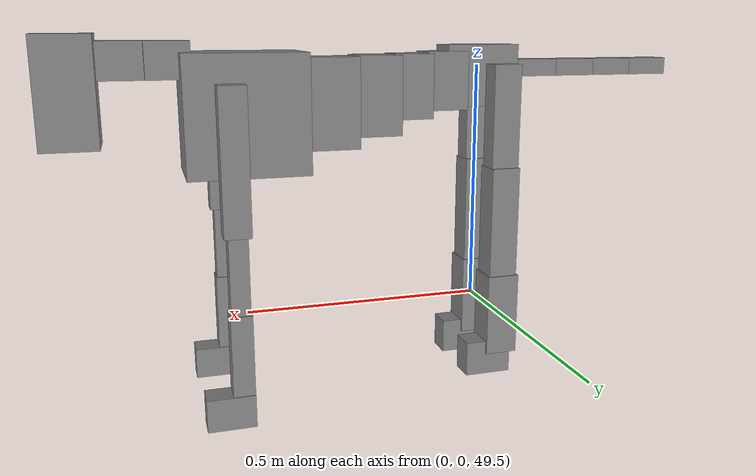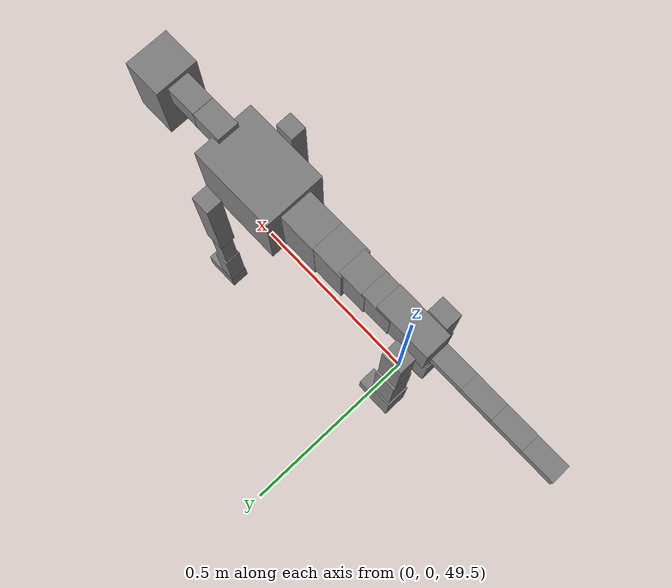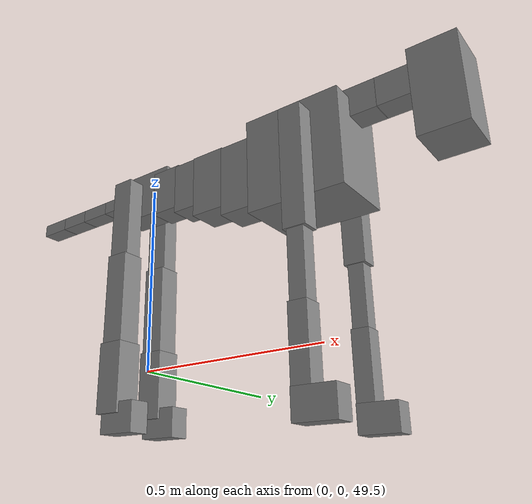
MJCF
<mujoco model="dog">

    <default>
        <joint armature="0.02" stiffness="1" damping="0.2" limited="true"/>
        <geom condim="3" friction="1 0.05 0.05" margin="0.01"/>
        <motor ctrllimited="true" ctrlrange="-1.0 1.0" forcelimited="true" gear="50"/>
    </default>

    <compiler inertiafromgeom="true" angle="radian"/>

    <option timestep="0.016" iterations="50" tolerance="1e-10" solver="Newton" jacobian="dense" cone="pyramidal"/>

    <size nconmax="20000" njmax="60000" nstack="5000000"/>
    <visual>
        <map force="0.1" zfar="30"/>
        <rgba haze="0.15 0.25 0.35 1"/>
        <quality shadowsize="2048"/>
        <global offwidth="800" offheight="800"/>
    </visual>

    <asset>
        <texture type="skybox" builtin="gradient" rgb1="0.3 0.5 0.7" rgb2="0 0 0" width="512" height="512"/>
        <texture name="texplane" type="2d" builtin="checker" rgb1=".2 .3 .4" rgb2=".1 0.15 0.2" width="512" height="512"
                 mark="cross" markrgb=".8 .8 .8"/>
        <texture name="texgeom" type="cube" builtin="flat" mark="cross" width="127" height="1278" rgb1="0.8 0.6 0.4"
                 rgb2="0.8 0.6 0.4" markrgb="1 1 1" random="0.01"/>

        <material name="matplane" reflectance="0.3" texture="texplane" texrepeat="1 1" texuniform="true"/>
        <material name="matgeom" texture="texgeom" texuniform="true" rgba="0.8 0.6 .4 1"/>
    </asset>

    <worldbody>
        <geom name="floor" pos="0 0 0" size="0 0 .25" type="plane" material="matplane" condim="3"/>

        <light directional="false" diffuse=".2 .2 .2" specular="0 0 0" pos="0 0 5" dir="0 0 -1" castshadow="false"/>
        <light mode="targetbodycom" target="torso" directional="false" diffuse=".8 .8 .8" specular="0.3 0.3 0.3"
               pos="0 0 4.0" dir="0 0 -1"/>

        <body name="root" pos="0 0 50">
            <freejoint name="root_1"/>
            <geom type="box" pos="0 0 -0.02" size="0.0774  0.0358  0.063" density="2030"/>

            <body name="spine1" pos="0.054 0 0">
                <joint name="spine1_y" axis="0 1 0" range="0 0.7" limited="true"/>
                <geom type="box" pos="0.02375 0 -0.03" size="0.04375  0.0375  0.05985" density="2030"/>

                <body name="spine2" pos="0.0612 0 0">
                    <joint name="spine2_y" axis="0 1 0" range="-0.15 0.15" limited="true"/>
                    <geom type="box" pos="0.03555  0  -0.04" size="0.04055  0.039  0.06615" density="2030"/>

                    <body name="spine3" pos="0.0730 0 0">
                        <joint name="spine3_y" axis="0 1 0" range="-0.15 0.15" limited="true"/>
                        <geom type="box" pos="0.03555  0  -0.057" size="0.04555  0.0445  0.081" density="2030"/>

                        <body name="spine4" pos="0.0780 0 0">
                            <joint name="spine4_y" axis="0 1 0" range="-0.15 0.15" limited="true"/>
                            <geom type="box" pos="0.05265  0  -0.07" size="0.05265  0.045  0.09135" density="2030"/>

                            <body name="torso" pos="0.1082 0 0">
                                <joint name="torso_y" axis="0 1 0" range="-0.15 0.15" limited="true"/>
                                <geom type="box" pos="0.11925  0  -0.085" size="0.11925  0.085  0.11745"
                                      density="2030"/>

                                <body name="neck1" pos="0.2160  0   0.0180">
                                    <joint name="neck1_y" axis="0 1 0" range="-1.2  -1" limited="true"/>
                                    <geom type="box" pos="0.0423  0  0" size="0.0423  0.03  0.036" density="2325"/>

                                    <body name="neck2" pos="0.0853  0  0">
                                        <joint name="neck2_y" axis="0 1 0" range="0.1  0" limited="true"/>
                                        <geom type="box" pos="0.0423  0  0" size="0.0423  0.03  0.036" density="2325"/>

                                        <body name="head" pos="0.0853  0  0">
                                            <joint name="head_y" axis="0 1 0" range="-0.3  -0.2" limited="true"/>
                                            <geom type="box" pos="0.0531  0  -0.055" size="0.0531  0.06  0.1044"
                                                  density="4030"/>

                                        </body>
                                    </body>
                                </body>

                                <body name="front_shoulder" pos="0.156  0   -0.0480">
                                    <joint name="front_shoulder_y" axis="0 1 0" range="-1 1.5" limited="true"/>
                                    <geom type="box" pos="0 0.13 -0.1133" size="0.0262  0.0224  0.1400" density="1158"/>
                                    <geom type="box" pos="0 -0.13 -0.1133" size="0.0262  0.0224  0.1400"
                                          density="1158"/>

                                    <body name="front_elbow" pos="0  0  -0.2267">
                                        <joint name="front_elbow_y" axis="0 1 0" range="-2 0" limited="true"/>
                                        <geom type="box" pos="0 0.13 -0.0951" size="0.0188  0.0192  0.0951"
                                              density="1081"/>
                                        <geom type="box" pos="0 -0.13 -0.0951" size="0.0188  0.0192  0.0951"
                                              density="1081"/>

                                        <body name="front_wrist" pos="0  0  -0.1901">
                                            <joint name="front_wrist_y" axis="0 1 0" range="-0.2 0" limited="true"/>
                                            <geom type="box" pos="0 0.13 -0.0812" size="0.0212  0.0236  0.0944"
                                                  density="1664"/>
                                            <geom type="box" pos="0 -0.13 -0.0812" size="0.0212  0.0236  0.0944"
                                                  density="1664"/>

                                            <body name="front_finger_end" pos="0  0  -0.1624">
                                                <joint name="front_finger_y" axis="0 1 0" range="-0.4 1"
                                                       limited="true"/>
                                                <geom type="box" pos="0.0257  0.13  -0.0178"
                                                      size="0.0471  0.0257  0.0328" density="1515"/>
                                                <geom type="box" pos="0.0257  -0.13  -0.0178"
                                                      size="0.0471  0.0257  0.0328" density="1515"/>

                                            </body>

                                        </body>
                                    </body>
                                </body>

                            </body>
                        </body>
                    </body>
                </body>
            </body>

            <body name="back_hip" pos="-0.03 0 -0.018">
                <joint name="back_hip_y" axis="0 1 0" range="-1.5 0.3" limited="true"/>
                <geom type="box" pos="0 0.07 -0.1022" size="0.0293  0.0230  0.1250" density="1154"/>
                <geom type="box" pos="0 -0.07 -0.1022" size="0.0293  0.0230  0.1250" density="1154"/>

                <body name="back_knee" pos="0  0  -0.2043">
                    <joint name="back_knee_y" axis="0 1 0" range="0 2.8" limited="true"/>
                    <geom type="box" pos="0 0.07 -0.1134" size="0.0301  0.0297  0.1289" density="1227"/>
                    <geom type="box" pos="0 -0.07 -0.1134" size="0.0301  0.0297  0.1289" density="1227"/>

                    <body name="back_ankle" pos="0  0  -0.2267">
                        <joint name="back_ankle_y" axis="0 1 0" range="-2.2 0" limited="true"/>
                        <geom type="box" pos="0 0.07 -0.0749" size="0.0339  0.0339  0.0861" density="1284"/>
                        <geom type="box" pos="0 -0.07 -0.0749" size="0.0339  0.0339  0.0861" density="1284"/>

                        <body name="back_toe_end" pos="0  0  -0.1497">
                            <joint name="back_toe_y" axis="0 1 0" range="-0.4 1" limited="true"/>
                            <geom type="box" pos="0.0270  0.07  -0.0217" size="0.0496  0.0270  0.0367" density="1515"/>
                            <geom type="box" pos="0.0270  -0.07  -0.0217" size="0.0496  0.0270  0.0367" density="1515"/>

                        </body>
                    </body>
                </body>
            </body>

            <body name="tail1" pos="-0.074 0 -0.006">
                <joint name="tail1_y" axis="0 1 0" range="-0.2 0.2" limited="true"/>
                <geom type="box" pos="-0.0536  0  0" size="0.045  0.025  0.0175" density="1587"/>

                <body name="tail2" pos="-0.09 0 0">
                    <joint name="tail2_y" axis="0 1 0" range="-0.2 0.2" limited="true"/>
                    <geom type="box" pos="-0.0536  0  0" size="0.045  0.025  0.0175" density="1587"/>

                    <body name="tail3" pos="-0.09 0 0">
                        <joint name="tail3_y" axis="0 1 0" range="-0.2 0.2" limited="true"/>
                        <geom type="box" pos="-0.0536  0  0" size="0.045  0.025  0.0175" density="1587"/>

                        <body name="tail4" pos="-0.09 0 0">
                            <joint name="tail4_y" axis="0 1 0" range="-0.2 0.2" limited="true"/>
                            <geom type="box" pos="-0.0536  0  0" size="0.045  0.025  0.0175" density="1587"/>

                        </body>
                    </body>
                </body>
            </body>
        </body>
    </worldbody>

    <actuator>
        <motor joint="spine1_y" forcerange="-150 150     "/>
        <motor joint="spine2_y" forcerange="-150 150     "/>
        <motor joint="spine3_y" forcerange="-150 150     "/>
        <motor joint="spine4_y" forcerange="-150 150     "/>
        <motor joint="torso_y" forcerange="-150 150     "/>
        <motor joint="neck1_y" forcerange="-100 100       "/>
        <motor joint="neck2_y" forcerange="-100 100       "/>
        <motor joint="head_y" forcerange="-150 150       "/>
        <motor joint="front_shoulder_y" forcerange="-117.45 131.56"/>
        <motor joint="front_elbow_y" forcerange="-110.65 129.08"/>
        <motor joint="front_wrist_y" forcerange="-107.57 81.22"/>
        <motor joint="front_finger_y" forcerange="-63.87 33.08"/>
        <motor joint="back_hip_y" forcerange="-239.02 267.11"/>
        <motor joint="back_knee_y" forcerange="-301.65 329.81"/>
        <motor joint="back_angle_y" forcerange="-198.01 244.83"/>
        <motor joint="back_toe_y" forcerange="-66.77 69.60"/>
        <motor joint="tail1_y" forcerange="-50 50     "/>
        <motor joint="tail2_y" forcerange="-50 50     "/>
        <motor joint="tail3_y" forcerange="-50 50     "/>
        <motor joint="tail4_y" forcerange="-50 50     "/>
    </actuator>
</mujoco>
